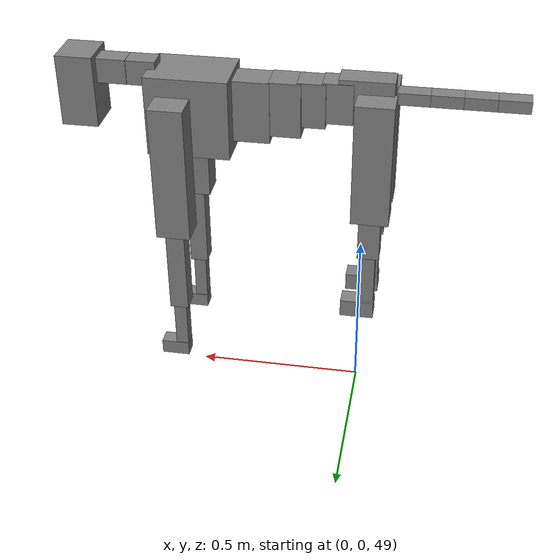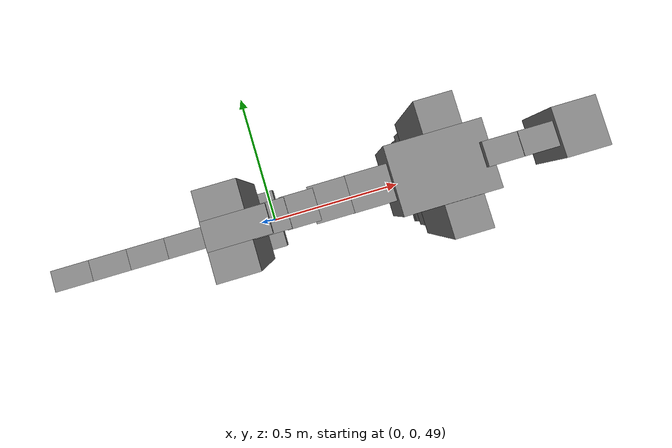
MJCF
<mujoco model="dog">

    <default>
        <joint armature="0.02" stiffness="1" damping="0.2" limited="true"/>
        <geom condim="3" friction="1 0.05 0.05" margin="0.01"/>
        <motor ctrllimited="true" ctrlrange="-1.0 1.0" forcelimited="true" gear="50"/>
    </default>

    <compiler inertiafromgeom="true" angle="radian"/>

    <option timestep="0.016" iterations="50" tolerance="1e-10" solver="Newton" jacobian="dense" cone="pyramidal"/>

    <size nconmax="20000" njmax="60000" nstack="5000000"/>
    <visual>
        <map force="0.1" zfar="30"/>
        <rgba haze="0.15 0.25 0.35 1"/>
        <quality shadowsize="2048"/>
        <global offwidth="800" offheight="800"/>
    </visual>

    <asset>
        <texture type="skybox" builtin="gradient" rgb1="0.3 0.5 0.7" rgb2="0 0 0" width="512" height="512"/>
        <texture name="texplane" type="2d" builtin="checker" rgb1=".2 .3 .4" rgb2=".1 0.15 0.2" width="512" height="512"
                 mark="cross" markrgb=".8 .8 .8"/>
        <texture name="texgeom" type="cube" builtin="flat" mark="cross" width="127" height="1278" rgb1="0.8 0.6 0.4"
                 rgb2="0.8 0.6 0.4" markrgb="1 1 1" random="0.01"/>

        <material name="matplane" reflectance="0.3" texture="texplane" texrepeat="1 1" texuniform="true"/>
        <material name="matgeom" texture="texgeom" texuniform="true" rgba="0.8 0.6 .4 1"/>
    </asset>

    <worldbody>
        <geom name="floor" pos="0 0 0" size="0 0 .25" type="plane" material="matplane" condim="3"/>

        <light directional="false" diffuse=".2 .2 .2" specular="0 0 0" pos="0 0 5" dir="0 0 -1" castshadow="false"/>
        <light mode="targetbodycom" target="torso" directional="false" diffuse=".8 .8 .8" specular="0.3 0.3 0.3"
               pos="0 0 4.0" dir="0 0 -1"/>

        <body name="root" pos="0 0 50">
            <freejoint name="root_1"/>
            <geom type="box" pos="0 0 -0.02" size="0.0774  0.0358  0.063" density="2030"/>

            <body name="spine1" pos="0.054 0 0">
                <joint name="spine1_y" axis="0 1 0" range="0 0.7" limited="true"/>
                <geom type="box" pos="0.02375 0 -0.03" size="0.04375  0.0375  0.05985" density="2030"/>

                <body name="spine2" pos="0.0612 0 0">
                    <joint name="spine2_y" axis="0 1 0" range="-0.15 0.15" limited="true"/>
                    <geom type="box" pos="0.03555  0  -0.04" size="0.04055  0.039  0.06615" density="2030"/>

                    <body name="spine3" pos="0.0730 0 0">
                        <joint name="spine3_y" axis="0 1 0" range="-0.15 0.15" limited="true"/>
                        <geom type="box" pos="0.03555  0  -0.057" size="0.04555  0.0445  0.081" density="2030"/>

                        <body name="spine4" pos="0.0780 0 0">
                            <joint name="spine4_y" axis="0 1 0" range="-0.15 0.15" limited="true"/>
                            <geom type="box" pos="0.05265  0  -0.07" size="0.05265  0.045  0.09135" density="2030"/>

                            <body name="torso" pos="0.1082 0 0">
                                <joint name="torso_y" axis="0 1 0" range="-0.15 0.15" limited="true"/>
                                <geom type="box" pos="0.11925  0  -0.085" size="0.11925  0.085  0.11745"
                                      density="2030"/>

                                <body name="neck1" pos="0.2160  0   0.0180">
                                    <joint name="neck1_y" axis="0 1 0" range="-1.2  -1" limited="true"/>
                                    <geom type="box" pos="0.0423  0  0" size="0.0423  0.03  0.036" density="2325"/>

                                    <body name="neck2" pos="0.0853  0  0">
                                        <joint name="neck2_y" axis="0 1 0" range="0.1  0" limited="true"/>
                                        <geom type="box" pos="0.0423  0  0" size="0.0423  0.03  0.036" density="2325"/>

                                        <body name="head" pos="0.0853  0  0">
                                            <joint name="head_y" axis="0 1 0" range="-0.3  -0.2" limited="true"/>
                                            <geom type="box" pos="0.0531  0  -0.055" size="0.0531  0.06  0.1044"
                                                  density="4030"/>

                                        </body>
                                    </body>
                                </body>

                                <body name="front_shoulder" pos="0.156  0   -0.0480">
                                    <joint name="front_shoulder_y" axis="0 1 0" range="-1 1.5" limited="true"/>
                                    <geom type="box" pos="0 0.13 -0.1758" size="0.0494  0.0423  0.2025" density="1158"/>
                                    <geom type="box" pos="0 -0.13 -0.1758" size="0.0494  0.0423  0.2025"
                                          density="1158"/>

                                    <body name="front_elbow" pos="0  0  -0.3517">
                                        <joint name="front_elbow_y" axis="0 1 0" range="-2 0" limited="true"/>
                                        <geom type="box" pos="0 0.13 -0.1412" size="0.0275  0.0282  0.1412"
                                              density="1081"/>
                                        <geom type="box" pos="0 -0.13 -0.1412" size="0.0275  0.0282  0.1412"
                                              density="1081"/>

                                        <body name="front_wrist" pos="0  0  -0.2824">
                                            <joint name="front_wrist_y" axis="0 1 0" range="-0.2 0" limited="true"/>
                                            <geom type="box" pos="0 0.13 -0.0786" size="0.0189  0.0210  0.0917"
                                                  density="1664"/>
                                            <geom type="box" pos="0 -0.13 -0.0786" size="0.0189  0.0210  0.0917"
                                                  density="1664"/>

                                            <body name="front_finger_end" pos="0  0  -0.1572">
                                                <joint name="front_finger_y" axis="0 1 0" range="-0.4 1"
                                                       limited="true"/>
                                                <geom type="box" pos="0.0228  0.13  -0.0073"
                                                      size="0.0418  0.0228  0.0223" density="1515"/>
                                                <geom type="box" pos="0.0228  -0.13  -0.0073"
                                                      size="0.0418  0.0228  0.0223" density="1515"/>

                                            </body>

                                        </body>
                                    </body>
                                </body>

                            </body>
                        </body>
                    </body>
                </body>
            </body>

            <body name="back_hip" pos="-0.03 0 -0.018">
                <joint name="back_hip_y" axis="0 1 0" range="-1.5 0.3" limited="true"/>
                <geom type="box" pos="0 0.07 -0.1598" size="0.0546  0.0428  0.1826" density="1154"/>
                <geom type="box" pos="0 -0.07 -0.1598" size="0.0546  0.0428  0.1826" density="1154"/>

                <body name="back_knee" pos="0  0  -0.3196">
                    <joint name="back_knee_y" axis="0 1 0" range="0 2.8" limited="true"/>
                    <geom type="box" pos="0 0.07 -0.0655" size="0.0316  0.0312  0.0810" density="1227"/>
                    <geom type="box" pos="0 -0.07 -0.0655" size="0.0316  0.0312  0.0810" density="1227"/>

                    <body name="back_ankle" pos="0  0  -0.1309">
                        <joint name="back_ankle_y" axis="0 1 0" range="-2.2 0" limited="true"/>
                        <geom type="box" pos="0 0.07 -0.0957" size="0.0206  0.0206  0.1069" density="1284"/>
                        <geom type="box" pos="0 -0.07 -0.0957" size="0.0206  0.0206  0.1069" density="1284"/>

                        <body name="back_toe_end" pos="0  0  -0.1914">
                            <joint name="back_toe_y" axis="0 1 0" range="-0.4 1" limited="true"/>
                            <geom type="box" pos="0.0271  0.07  -0.0117" size="0.0496  0.0271  0.0267" density="1515"/>
                            <geom type="box" pos="0.0271  -0.07  -0.0117" size="0.0496  0.0271  0.0267" density="1515"/>

                        </body>
                    </body>
                </body>
            </body>

            <body name="tail1" pos="-0.074 0 -0.006">
                <joint name="tail1_y" axis="0 1 0" range="-0.2 0.2" limited="true"/>
                <geom type="box" pos="-0.0536  0  0" size="0.045  0.025  0.0175" density="1587"/>

                <body name="tail2" pos="-0.09 0 0">
                    <joint name="tail2_y" axis="0 1 0" range="-0.2 0.2" limited="true"/>
                    <geom type="box" pos="-0.0536  0  0" size="0.045  0.025  0.0175" density="1587"/>

                    <body name="tail3" pos="-0.09 0 0">
                        <joint name="tail3_y" axis="0 1 0" range="-0.2 0.2" limited="true"/>
                        <geom type="box" pos="-0.0536  0  0" size="0.045  0.025  0.0175" density="1587"/>

                        <body name="tail4" pos="-0.09 0 0">
                            <joint name="tail4_y" axis="0 1 0" range="-0.2 0.2" limited="true"/>
                            <geom type="box" pos="-0.0536  0  0" size="0.045  0.025  0.0175" density="1587"/>

                        </body>
                    </body>
                </body>
            </body>
        </body>
    </worldbody>

    <actuator>
        <motor joint="spine1_y" forcerange="-150 150     "/>
        <motor joint="spine2_y" forcerange="-150 150     "/>
        <motor joint="spine3_y" forcerange="-150 150     "/>
        <motor joint="spine4_y" forcerange="-150 150     "/>
        <motor joint="torso_y" forcerange="-150 150     "/>
        <motor joint="neck1_y" forcerange="-100 100       "/>
        <motor joint="neck2_y" forcerange="-100 100       "/>
        <motor joint="head_y" forcerange="-150 150       "/>
        <motor joint="front_shoulder_y" forcerange="-197.22 184.45"/>
        <motor joint="front_elbow_y" forcerange="-157.91 146.90"/>
        <motor joint="front_wrist_y" forcerange="-104.41 63.50"/>
        <motor joint="front_finger_y" forcerange="-25.27 56.26"/>
        <motor joint="back_hip_y" forcerange="-390.12 381.16"/>
        <motor joint="back_knee_y" forcerange="-385.35 268.31"/>
        <motor joint="back_angle_y" forcerange="-144.25 84.71"/>
        <motor joint="back_toe_y" forcerange="-111.50 25.12"/>
        <motor joint="tail1_y" forcerange="-50 50     "/>
        <motor joint="tail2_y" forcerange="-50 50     "/>
        <motor joint="tail3_y" forcerange="-50 50     "/>
        <motor joint="tail4_y" forcerange="-50 50     "/>
    </actuator>
</mujoco>
